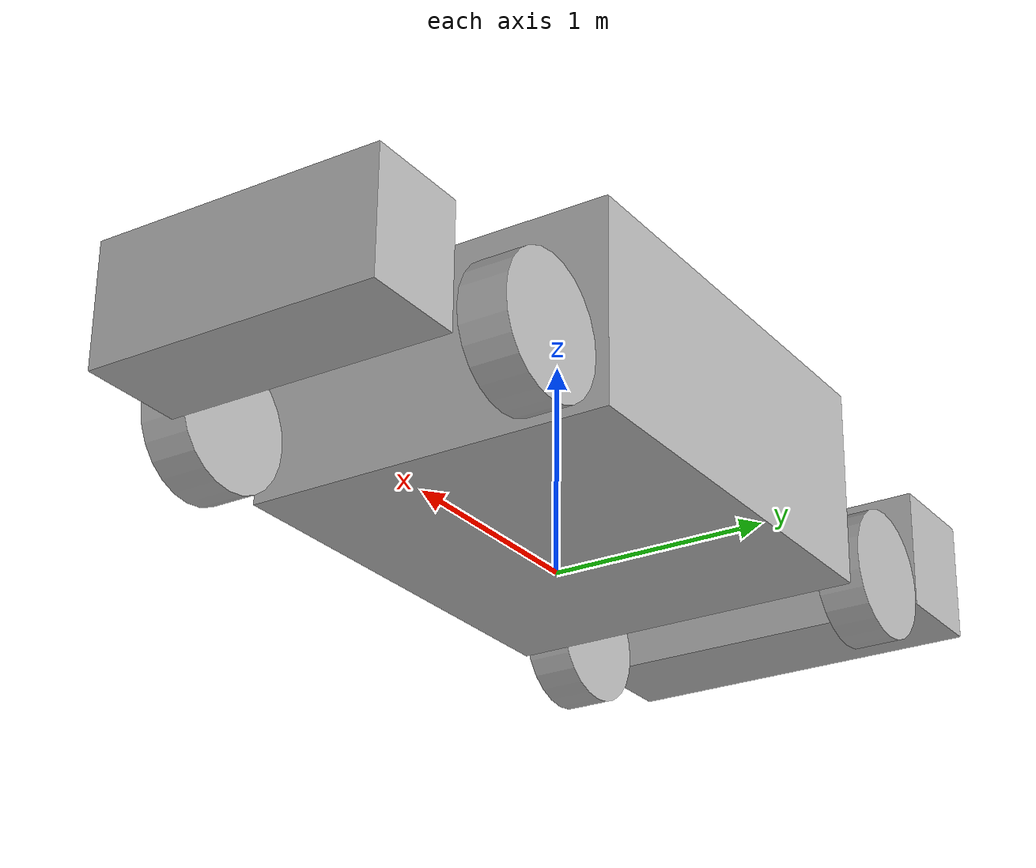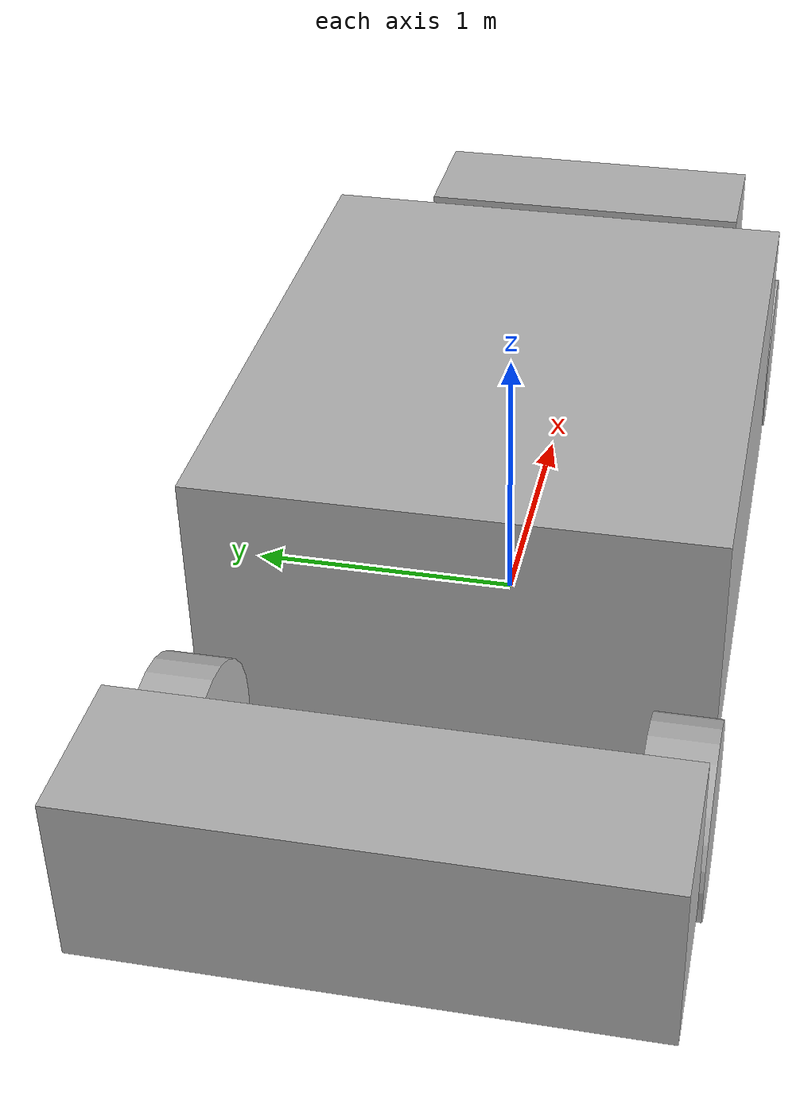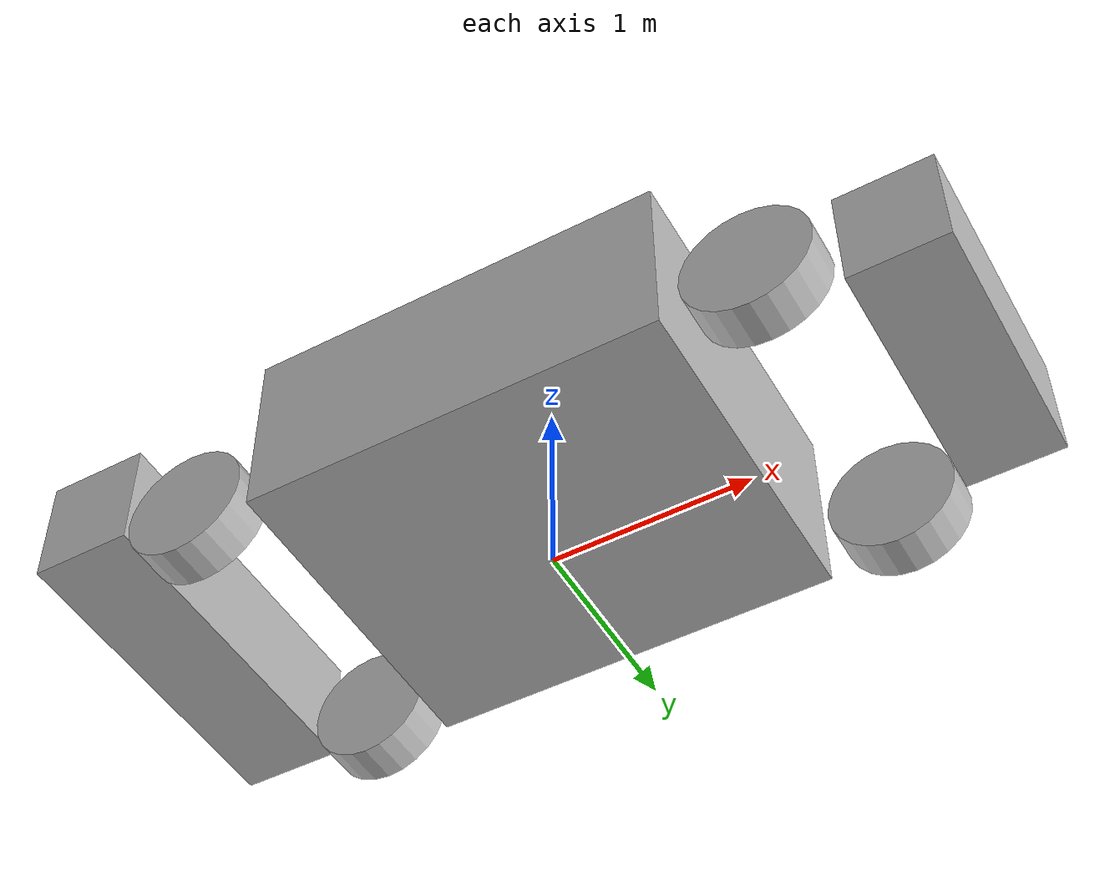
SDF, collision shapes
<?xml version="1.0" ?>
<sdf version="1.9">
  <model name="prius_vehicle">
    <self_collide>false</self_collide>
    <static>false</static>

    <link name="base_link">
      <pose>0 0 0 0 0 0</pose>
      <inertial>
        <mass>1356.0</mass>
        <inertia>
          <ixx>591.30846112</ixx>
          <ixy>0</ixy>
          <ixz>0</ixz>
          <iyy>2581.13354740</iyy>
          <iyz>0</iyz>
          <izz>2681.95008628</izz>
        </inertia>
      </inertial>

      <visual name="body_visual">
        <pose>0 0 0 0 0 1.5708</pose>
        <geometry>
          <mesh>
            <uri>model://prius_vehicle/meshes/hybrid_body.obj</uri>
            <scale>0.01 0.01 0.01</scale>
          </mesh>
        </geometry>
      </visual>

      <collision name="body_collision">
        <pose>-0.05 0 0.625 0 0 0</pose>
        <geometry>
          <box>
            <size>2.1 1.7526 0.95</size>
          </box>
        </geometry>
      </collision>

      <collision name="front_bumper_collision">
        <pose>2.0 0 0.458488 0 0 0</pose>
        <geometry>
          <box>
            <size>0.48 1.337282 0.566691</size>
          </box>
        </geometry>
      </collision>

      <collision name="rear_bumper_collision">
        <pose>-2.054454 0 0.577870 0 0 0</pose>
        <geometry>
          <box>
            <size>0.512093 1.781650 0.581427</size>
          </box>
        </geometry>
      </collision>

      <sensor name="gps_sensor" type="navsat">
        <pose>0 0 1.45 0 0 0</pose>
        <always_on>true</always_on>
        <update_rate>10</update_rate>
        <topic>/mavros/global_position/global</topic>
      </sensor>

      <sensor name="imu_sensor" type="imu">
        <pose>0 0 1.2 0 0 0</pose>
        <always_on>true</always_on>
        <update_rate>100</update_rate>
        <topic>/imu/data</topic>
      </sensor>

      <sensor name="lidar_sensor" type="gpu_lidar">
        <pose>0 0 1.55 0 0 0</pose>
        <topic>/lidar</topic>
        <update_rate>10</update_rate>
        <lidar>
          <scan>
            <horizontal>
              <samples>640</samples>
              <resolution>1</resolution>
              <min_angle>-3.14159</min_angle>
              <max_angle>3.14159</max_angle>
            </horizontal>
            <vertical>
              <samples>16</samples>
              <resolution>1</resolution>
              <min_angle>-0.261799</min_angle>
              <max_angle>0.261799</max_angle>
            </vertical>
          </scan>
          <range>
            <min>0.1</min>
            <max>60.0</max>
            <resolution>0.01</resolution>
          </range>
        </lidar>
        <always_on>true</always_on>
        <visualize>true</visualize>
        <ignition_frame_id>velodyne</ignition_frame_id>
      </sensor>
    </link>

    <link name="front_left_steering">
      <pose>1.41 0.767 0.31265 0 0 0</pose>
      <inertial>
        <mass>1.0</mass>
        <inertia>
          <ixx>0.004</ixx>
          <ixy>0</ixy>
          <ixz>0</ixz>
          <iyy>0.004</iyy>
          <iyz>0</iyz>
          <izz>0.004</izz>
        </inertia>
      </inertial>
    </link>

    <link name="front_right_steering">
      <pose>1.41 -0.767 0.31265 0 0 0</pose>
      <inertial>
        <mass>1.0</mass>
        <inertia>
          <ixx>0.004</ixx>
          <ixy>0</ixy>
          <ixz>0</ixz>
          <iyy>0.004</iyy>
          <iyz>0</iyz>
          <izz>0.004</izz>
        </inertia>
      </inertial>
    </link>

    <link name="front_left_wheel">
      <pose>1.41 0.767 0.31265 -1.5707 0 0</pose>
      <inertial>
        <mass>11.0</mass>
        <inertia>
          <ixx>0.58631238</ixx>
          <ixy>0</ixy>
          <ixz>0</ixz>
          <iyy>0.33552910</iyy>
          <iyz>0</iyz>
          <izz>0.33552910</izz>
        </inertia>
      </inertial>
      <collision name="collision">
        <geometry>
          <cylinder>
            <radius>0.31265</radius>
            <length>0.22</length>
          </cylinder>
        </geometry>
        <surface>
          <friction>
            <ode>
              <mu>0.9</mu>
              <mu2>0.9</mu2>
            </ode>
          </friction>
        </surface>
      </collision>
      <visual name="visual">
        <pose>0 0 0 0 -1.5708 0</pose>
        <geometry>
          <mesh>
            <uri>model://prius_vehicle/meshes/wheel.obj</uri>
            <scale>0.01 0.01 0.01</scale>
          </mesh>
        </geometry>
      </visual>
    </link>

    <link name="front_right_wheel">
      <pose>1.41 -0.767 0.31265 -1.5707 0 0</pose>
      <inertial>
        <mass>11.0</mass>
        <inertia>
          <ixx>0.58631238</ixx>
          <ixy>0</ixy>
          <ixz>0</ixz>
          <iyy>0.33552910</iyy>
          <iyz>0</iyz>
          <izz>0.33552910</izz>
        </inertia>
      </inertial>
      <collision name="collision">
        <geometry>
          <cylinder>
            <radius>0.31265</radius>
            <length>0.22</length>
          </cylinder>
        </geometry>
        <surface>
          <friction>
            <ode>
              <mu>0.9</mu>
              <mu2>0.9</mu2>
            </ode>
          </friction>
        </surface>
      </collision>
      <visual name="visual">
        <pose>0 0 0 0 -1.5708 0</pose>
        <geometry>
          <mesh>
            <uri>model://prius_vehicle/meshes/wheel.obj</uri>
            <scale>0.01 0.01 0.01</scale>
          </mesh>
        </geometry>
      </visual>
    </link>

    <link name="rear_left_wheel">
      <pose>-1.45 0.793 0.31265 -1.5707 0 0</pose>
      <inertial>
        <mass>11.0</mass>
        <inertia>
          <ixx>0.58631238</ixx>
          <ixy>0</ixy>
          <ixz>0</ixz>
          <iyy>0.33552910</iyy>
          <iyz>0</iyz>
          <izz>0.33552910</izz>
        </inertia>
      </inertial>
      <collision name="collision">
        <geometry>
          <cylinder>
            <radius>0.31265</radius>
            <length>0.22</length>
          </cylinder>
        </geometry>
        <surface>
          <friction>
            <ode>
              <mu>0.9</mu>
              <mu2>0.9</mu2>
            </ode>
          </friction>
        </surface>
      </collision>
      <visual name="visual">
        <pose>0 0 0 0 -1.5708 0</pose>
        <geometry>
          <mesh>
            <uri>model://prius_vehicle/meshes/wheel.obj</uri>
            <scale>0.01 0.01 0.01</scale>
          </mesh>
        </geometry>
      </visual>
    </link>

    <link name="rear_right_wheel">
      <pose>-1.45 -0.793 0.31265 -1.5707 0 0</pose>
      <inertial>
        <mass>11.0</mass>
        <inertia>
          <ixx>0.58631238</ixx>
          <ixy>0</ixy>
          <ixz>0</ixz>
          <iyy>0.33552910</iyy>
          <iyz>0</iyz>
          <izz>0.33552910</izz>
        </inertia>
      </inertial>
      <collision name="collision">
        <geometry>
          <cylinder>
            <radius>0.31265</radius>
            <length>0.22</length>
          </cylinder>
        </geometry>
        <surface>
          <friction>
            <ode>
              <mu>0.9</mu>
              <mu2>0.9</mu2>
            </ode>
          </friction>
        </surface>
      </collision>
      <visual name="visual">
        <pose>0 0 0 0 -1.5708 0</pose>
        <geometry>
          <mesh>
            <uri>model://prius_vehicle/meshes/wheel.obj</uri>
            <scale>0.01 0.01 0.01</scale>
          </mesh>
        </geometry>
      </visual>
    </link>

    <joint name="front_left_steer_joint" type="revolute">
      <parent>base_link</parent>
      <child>front_left_steering</child>
      <axis>
        <xyz>0 0 1</xyz>
        <limit>
          <lower>-0.6458</lower>
          <upper>0.6458</upper>
        </limit>
        <dynamics>
          <damping>1.0</damping>
        </dynamics>
      </axis>
    </joint>

    <joint name="front_right_steer_joint" type="revolute">
      <parent>base_link</parent>
      <child>front_right_steering</child>
      <axis>
        <xyz>0 0 1</xyz>
        <limit>
          <lower>-0.6458</lower>
          <upper>0.6458</upper>
        </limit>
        <dynamics>
          <damping>1.0</damping>
        </dynamics>
      </axis>
    </joint>

    <joint name="front_left_wheel_joint" type="revolute">
      <parent>front_left_steering</parent>
      <child>front_left_wheel</child>
      <axis>
        <xyz>0 0 1</xyz>
        <limit>
          <lower>-1e16</lower>
          <upper>1e16</upper>
        </limit>
      </axis>
    </joint>

    <joint name="front_right_wheel_joint" type="revolute">
      <parent>front_right_steering</parent>
      <child>front_right_wheel</child>
      <axis>
        <xyz>0 0 1</xyz>
        <limit>
          <lower>-1e16</lower>
          <upper>1e16</upper>
        </limit>
      </axis>
    </joint>

    <joint name="rear_left_wheel_joint" type="revolute">
      <parent>base_link</parent>
      <child>rear_left_wheel</child>
      <axis>
        <xyz>0 0 1</xyz>
        <limit>
          <lower>-1e16</lower>
          <upper>1e16</upper>
        </limit>
      </axis>
    </joint>

    <joint name="rear_right_wheel_joint" type="revolute">
      <parent>base_link</parent>
      <child>rear_right_wheel</child>
      <axis>
        <xyz>0 0 1</xyz>
        <limit>
          <lower>-1e16</lower>
          <upper>1e16</upper>
        </limit>
      </axis>
    </joint>

    <plugin filename="PriusDriveSystem" name="offroad_gazebo_integration::PriusDriveSystem">
      <drive_topic>/cmd_drive</drive_topic>
      <gear_topic>/cmd_gear</gear_topic>
      <wheel_base>2.86</wheel_base>
      <front_track_width>1.534</front_track_width>
      <wheel_radius>0.31265</wheel_radius>
      <max_steer>0.6458</max_steer>
      <max_speed>10.0</max_speed>
      <front_torque>859.4004393000001</front_torque>
      <back_torque>0.0</back_torque>
      <front_brake_torque>1031.28052716</front_brake_torque>
      <back_brake_torque>687.5203514400001</back_brake_torque>
      <flwheel_steering_p_gain>1e4</flwheel_steering_p_gain>
      <flwheel_steering_d_gain>3e2</flwheel_steering_d_gain>
      <drive_speed_gain>125.0</drive_speed_gain>
      <brake_damping_gain>800.0</brake_damping_gain>
      <steering_force_limit>2000.0</steering_force_limit>
    </plugin>

    <plugin filename="ignition-gazebo-odometry-publisher-system" name="ignition::gazebo::systems::OdometryPublisher">
      <odom_topic>/odom</odom_topic>
      <frame_id>odom</frame_id>
      <child_frame_id>base_link</child_frame_id>
      <odom_publish_frequency>50</odom_publish_frequency>
    </plugin>
  </model>
</sdf>
